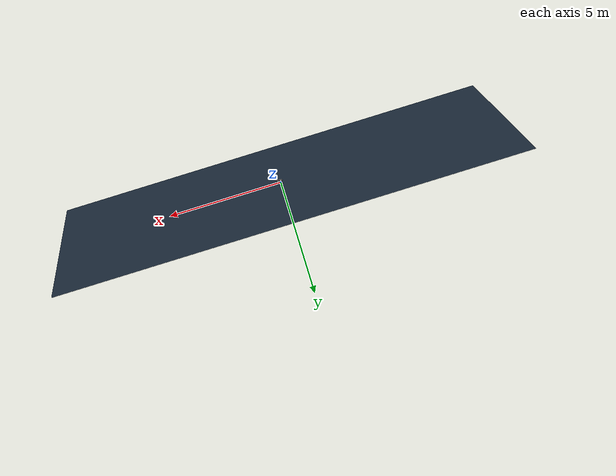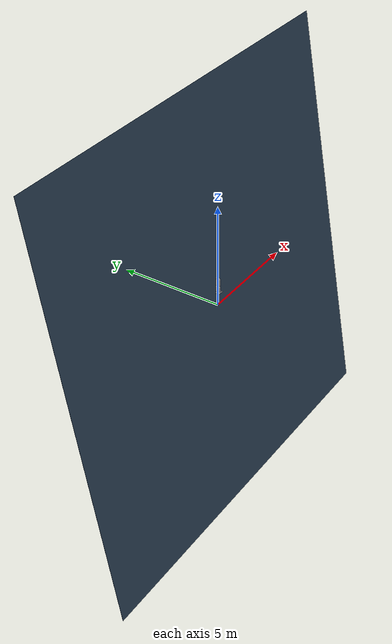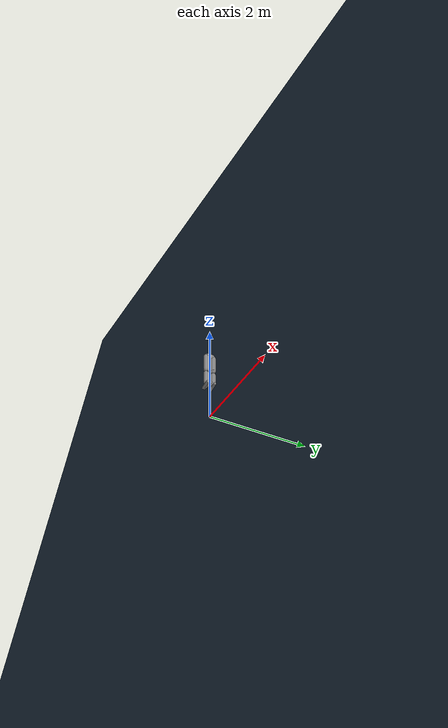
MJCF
<mujoco model="testPassiveWalker">

    <asset>
		<!-- Sets sky rendering
		-->
        <texture type="skybox" builtin="gradient" width="100" height="100" rgb1=".5 .8 .5"
            rgb2="0 0 0"/>
		<!-- Not clear to me where this is used yet
		-->
        <texture name="texgeom" type="cube" builtin="flat" mark="cross" width="127" height="1278"
            rgb1="0.1 0.8 0.1" rgb2="0.8 0.6 0.4" markrgb="1 1 1" random="0.01"/>
		<!-- Sets floor rendering
		-->
        <texture name="texplane" type="2d" builtin="checker" rgb1=".2 .3 .4" rgb2=".1 0.15 0.2"
            width="100" height="100"/>
		<!-- Create materials based on textures above
		-->
        <material name='MatPlane' reflectance='0.5' texture="texplane"/>
        <material name='geom' texture="texgeom" texuniform="true"/>
    </asset>

	<default>
		<default class = 'thigh'>
			<geom fromto = '0 0 0 0 0 -0.3' type='capsule' size='0.05' />
		</default>
		<default class = 'shin'>
			<geom fromto = '0 0 0 0 0 -0.2' type='capsule' size='0.05' />
		</default>
		<default class = 'foot_cap1'>
			<geom type='capsule' fromto='-.07 -0.02 0 0.14 -0.04 0'  size='0.027' />
		</default>
		<default class = 'foot_cap2'>
			<geom  type='capsule' fromto='-.07 0 0 0.14  0.02 0'  size='0.027' />
		</default>
		<default class = 'hip_joint_x'>
			<joint type='hinge' pos='0 0 0' axis='1 0 0' range='-25 5'   damping='5' stiffness='10' armature='0.01' />
		</default>
		<default class = 'hip_joint_y'>
            <joint type='hinge' pos='0 0 0' axis='0 1 0' range='-110 20' damping='5' stiffness='20' armature='0.0080' />
		</default>
		<default class = 'hip_joint_z'>
            <joint type='hinge' pos='0 0 0' axis='0 0 1' range='-60 35'  damping='5' stiffness='10' armature='0.01' />
		</default>
		<default class = 'knee_joint'>
			<joint type='hinge' pos='0 0 .02' axis='0 -1 0' range='-160 -2' armature='0.0060' />
		</default>
		<default class = 'ankle_joint_x'>
			<joint type='hinge' pos='0 0 0.04' axis='1 0 0.5' range='-50 50' stiffness='1'  armature='0.0006' />
		</default>
		<default class = 'ankle_joint_y'>
            <joint type='hinge' pos='0 0 0.08' axis='0 1 0'   range='-50 50' stiffness='4' armature='0.0008' />
		</default>
	</default>

	<worldbody>
        <light directional='false' diffuse='.8 .8 .8' specular='0.3 0.3 0.3' pos='0 0 4.5' dir='0 0 -1'/>

		<!-- Everything pretty self explanatory, condim = 3 sets the contact type to Regular frictional contact, opposing slip in the tangent plane. see http://mujoco.org/book/modeling.html#CSchema for details
		-->
        <geom name='floor' pos='0 0 0' size='10 10 0.125' euler='80 0 0' type='plane' material="MatPlane" condim='3'/>

        <body name='pelvis' pos='0 0 1.4' >
		    <joint name='root' type='free' pos='0 0 0' limited='false' damping='0' armature='0' stiffness='0'/>

			<!-- Details on attributes of geoms here: http://mujoco.org/book/modeling.html
			-->
            <geom name='torso1' type='capsule' fromto='0 -.05 0 0 .05 0'  size='0.05' />

			<body name='right_leg' pos='0 0.075 -0.025' >
			<joint name='right_hip_x' class = 'hip_joint_x'/>
			<joint name='right_hip_y' class = 'hip_joint_y'/>
			<joint name='right_hip_z' class = 'hip_joint_z'/>
			<geom class="thigh" name='right_thigh'/>
				<body name='right_shin' pos='0 0 -0.4' >
				<joint name='right_knee' class = 'knee_joint'/>
				<geom name='right_shin' class = 'shin'/>
                    <body name='right_foot' pos='0 0 -0.3' >
						<joint name='right_ankle_x' class = 'ankle_joint_x'/>
						<joint name='right_ankle_y' class = 'ankle_joint_y'/>
                        <geom class = 'foot_cap1' name='right_foot_cap1'/>
                        <geom class = 'foot_cap1' name='right_foot_cap2'/>
					</body>
				</body>
			</body>
			<body name='left_leg' pos='0 -0.075 -0.025' >
			<joint name='left_hip_x' class = 'hip_joint_x'/>
			<joint name='left_hip_y' class = 'hip_joint_y'/>
			<joint name='left_hip_z' class = 'hip_joint_z'/>
			<geom class="thigh" name='left_thigh'/>
				<body name='left_shin' pos='0 0 -0.4' >
				<joint name='left_knee' class = 'knee_joint'/>
				<geom name='left_shin' class = 'shin'/>
                    <body name='left_foot' pos='0 0 -0.3' >
						<joint name='left_ankle_x' class = 'ankle_joint_x'/>
						<joint name='left_ankle_y' class = 'ankle_joint_y'/>
                        <geom class = 'foot_cap1' name='left_foot_cap1'/>
                        <geom class = 'foot_cap2' name='left_foot_cap2'/>
					</body>
				</body>
			</body>
		</body>

	</worldbody>
</mujoco>
